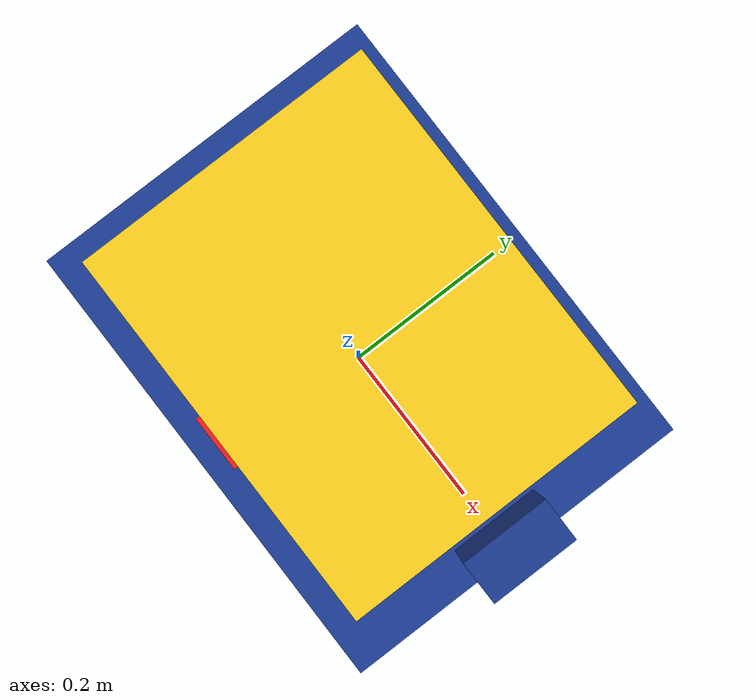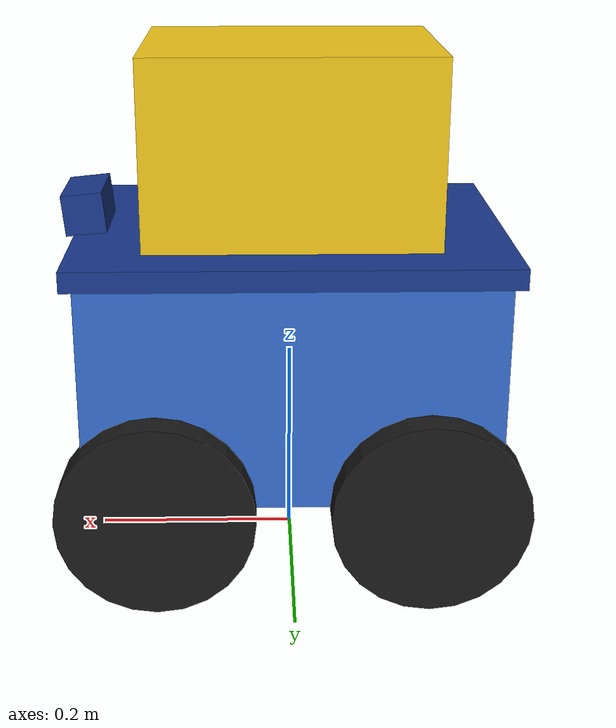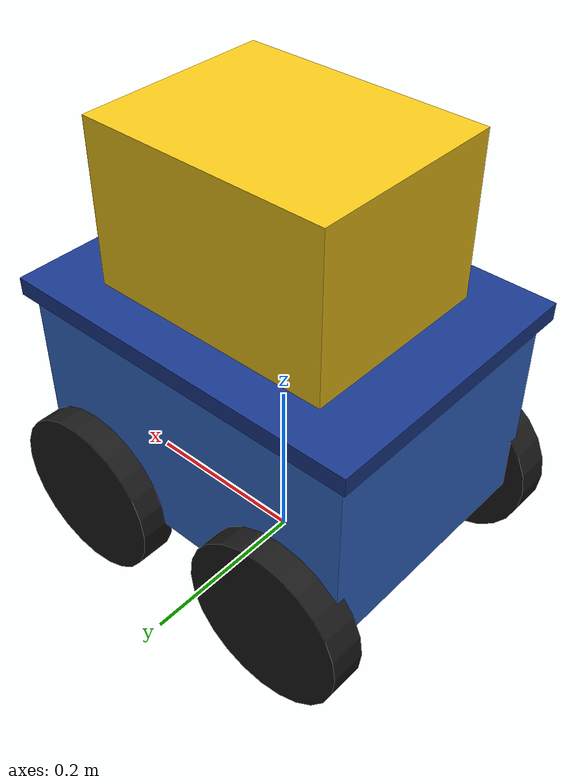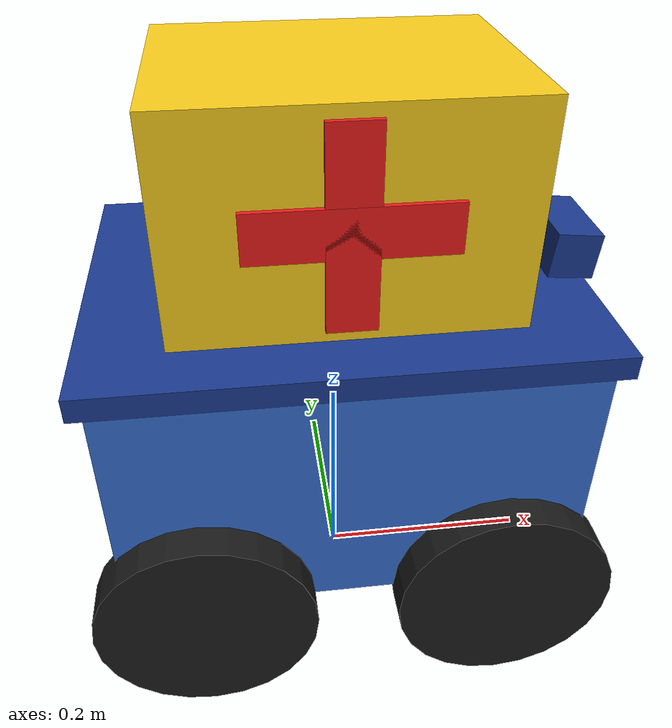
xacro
<?xml version="1.0"?>
<!--
  PharmaBot Robot URDF
  Robot de livraison médicale :
    - Base différentielle (4 roues)
    - Capteur LiDAR 360°
    - Caméra frontale
    - Boîte cargo
    - Compatible Nav2 + Gazebo Sim
-->
<robot name="pharmabot" xmlns:xacro="http://www.ros.org/wiki/xacro">

  <!-- ═══ PROPRIÉTÉS ═══ -->
  <xacro:property name="robot_mass"  value="12.0"/>
  <xacro:property name="base_w"     value="0.30"/>
  <xacro:property name="base_l"     value="0.40"/>
  <xacro:property name="base_h"     value="0.22"/>
  <xacro:property name="wheel_r"    value="0.095"/>
  <xacro:property name="wheel_w"    value="0.04"/>
  <xacro:property name="caster_r"   value="0.03"/>

  <!-- ═══ COULEURS GAZEBO ═══ -->
  <material name="blue_medical">
    <color rgba="0.20 0.42 0.80 1"/>
  </material>
  <material name="dark_blue">
    <color rgba="0.10 0.22 0.55 1"/>
  </material>
  <material name="black_rubber">
    <color rgba="0.10 0.10 0.10 1"/>
  </material>
  <material name="yellow_cargo">
    <color rgba="0.95 0.78 0.10 1"/>
  </material>
  <material name="cyan_sensor">
    <color rgba="0.00 0.85 0.90 1"/>
  </material>
  <material name="white">
    <color rgba="0.95 0.95 0.95 1"/>
  </material>
  <material name="red_cross">
    <color rgba="0.90 0.10 0.10 1"/>
  </material>
  <material name="gray_metal">
    <color rgba="0.55 0.55 0.60 1"/>
  </material>

  <!-- ═══════════════════════════════════════════════
       BASE LINK
  ═══════════════════════════════════════════════ -->
  <link name="base_footprint"/>

  <joint name="base_joint" type="fixed">
    <parent link="base_footprint"/>
    <child  link="base_link"/>
    <origin xyz="0 0 ${wheel_r}" rpy="0 0 0"/>
  </joint>

  <!-- Corps principal -->
  <link name="base_link">
    <visual>
      <origin xyz="0 0 ${base_h/2}" rpy="0 0 0"/>
      <geometry><box size="${base_l} ${base_w} ${base_h}"/></geometry>
      <material name="blue_medical"/>
    </visual>
    <collision>
      <origin xyz="0 0 ${base_h/2}" rpy="0 0 0"/>
      <geometry><box size="${base_l} ${base_w} ${base_h}"/></geometry>
    </collision>
    <inertial>
      <mass value="${robot_mass}"/>
      <inertia ixx="0.12" ixy="0" ixz="0" iyy="0.14" iyz="0" izz="0.18"/>
    </inertial>
  </link>

  <!-- Plaque haute -->
  <joint name="top_plate_joint" type="fixed">
    <parent link="base_link"/>
    <child  link="top_plate"/>
    <origin xyz="0 0 ${base_h}" rpy="0 0 0"/>
  </joint>
  <link name="top_plate">
    <visual>
      <origin xyz="0 0 0.01" rpy="0 0 0"/>
      <geometry><box size="${base_l+0.02} ${base_w+0.02} 0.02"/></geometry>
      <material name="dark_blue"/>
    </visual>
    <collision>
      <origin xyz="0 0 0.01" rpy="0 0 0"/>
      <geometry><box size="${base_l+0.02} ${base_w+0.02} 0.02"/></geometry>
    </collision>
    <inertial>
      <mass value="0.5"/>
      <inertia ixx="0.01" ixy="0" ixz="0" iyy="0.01" iyz="0" izz="0.01"/>
    </inertial>
  </link>

  <!-- Boîte cargo médicaments -->
  <joint name="cargo_joint" type="fixed">
    <parent link="top_plate"/>
    <child  link="cargo_box"/>
    <origin xyz="0 0 0.02" rpy="0 0 0"/>
  </joint>
  <link name="cargo_box">
    <visual>
      <origin xyz="0 0 0.09" rpy="0 0 0"/>
      <geometry><box size="0.28 0.22 0.18"/></geometry>
      <material name="yellow_cargo"/>
    </visual>
    <collision>
      <origin xyz="0 0 0.09" rpy="0 0 0"/>
      <geometry><box size="0.28 0.22 0.18"/></geometry>
    </collision>
    <inertial>
      <mass value="1.5"/>
      <inertia ixx="0.005" ixy="0" ixz="0" iyy="0.006" iyz="0" izz="0.007"/>
    </inertial>
  </link>

  <!-- Croix rouge cargo (avant) -->
  <joint name="cross_h_joint" type="fixed">
    <parent link="cargo_box"/>
    <child  link="cross_h"/>
    <origin xyz="0 -0.112 0.09" rpy="0 0 0"/>
  </joint>
  <link name="cross_h">
    <visual>
      <origin xyz="0 0 0" rpy="0 0 0"/>
      <geometry><box size="0.16 0.005 0.04"/></geometry>
      <material name="red_cross"/>
    </visual>
    <inertial>
      <mass value="0.01"/>
      <inertia ixx="0.0001" ixy="0" ixz="0" iyy="0.0001" iyz="0" izz="0.0001"/>
    </inertial>
  </link>
  <joint name="cross_v_joint" type="fixed">
    <parent link="cargo_box"/>
    <child  link="cross_v"/>
    <origin xyz="0 -0.112 0.09" rpy="0 0 0"/>
  </joint>
  <link name="cross_v">
    <visual>
      <origin xyz="0 0 0" rpy="0 0 0"/>
      <geometry><box size="0.04 0.005 0.16"/></geometry>
      <material name="red_cross"/>
    </visual>
    <inertial>
      <mass value="0.01"/>
      <inertia ixx="0.0001" ixy="0" ixz="0" iyy="0.0001" iyz="0" izz="0.0001"/>
    </inertial>
  </link>

  <!-- ═══════════════════════════════════════════════
       ROUES GAUCHE / DROITE
  ═══════════════════════════════════════════════ -->
  <xacro:macro name="wheel" params="name x y">
    <joint name="${name}_joint" type="continuous">
      <parent link="base_link"/>
      <child  link="${name}"/>
      <origin xyz="${x} ${y} 0" rpy="${-pi/2} 0 0"/>
      <axis xyz="0 0 1"/>
      <dynamics damping="0.02" friction="0.05"/>
    </joint>
    <link name="${name}">
      <visual>
        <geometry><cylinder radius="${wheel_r}" length="${wheel_w}"/></geometry>
        <material name="black_rubber"/>
      </visual>
      <collision>
        <geometry><cylinder radius="${wheel_r}" length="${wheel_w}"/></geometry>
      </collision>
      <inertial>
        <mass value="0.8"/>
        <inertia ixx="0.003" ixy="0" ixz="0" iyy="0.003" iyz="0" izz="0.006"/>
      </inertial>
    </link>
  </xacro:macro>

  <xacro:wheel name="wheel_left_front"  x=" 0.13" y=" 0.16"/>
  <xacro:wheel name="wheel_right_front" x=" 0.13" y="-0.16"/>
  <xacro:wheel name="wheel_left_rear"   x="-0.13" y=" 0.16"/>
  <xacro:wheel name="wheel_right_rear"  x="-0.13" y="-0.16"/>

  <!-- Roulette avant -->
  <joint name="caster_front_joint" type="fixed">
    <parent link="base_link"/>
    <child  link="caster_front"/>
    <origin xyz="0.17 0 ${-wheel_r+caster_r}" rpy="0 0 0"/>
  </joint>
  <link name="caster_front">
    <visual>
      <geometry><sphere radius="${caster_r}"/></geometry>
      <material name="gray_metal"/>
    </visual>
    <collision>
      <geometry><sphere radius="${caster_r}"/></geometry>
    </collision>
    <inertial>
      <mass value="0.1"/>
      <inertia ixx="0.0001" ixy="0" ixz="0" iyy="0.0001" iyz="0" izz="0.0001"/>
    </inertial>
  </link>

  <!-- ═══════════════════════════════════════════════
       LiDAR 360°
  ═══════════════════════════════════════════════ -->
  <joint name="lidar_joint" type="fixed">
    <parent link="top_plate"/>
    <child  link="lidar_link"/>
    <origin xyz="0 0 0.12" rpy="0 0 0"/>
  </joint>
  <link name="lidar_link">
    <visual>
      <geometry><cylinder radius="0.04" length="0.06"/></geometry>
      <material name="cyan_sensor"/>
    </visual>
    <collision>
      <geometry><cylinder radius="0.04" length="0.06"/></geometry>
    </collision>
    <inertial>
      <mass value="0.15"/>
      <inertia ixx="0.0002" ixy="0" ixz="0" iyy="0.0002" iyz="0" izz="0.0002"/>
    </inertial>
  </link>

  <!-- ═══════════════════════════════════════════════
       CAMÉRA FRONTALE
  ═══════════════════════════════════════════════ -->
  <joint name="camera_joint" type="fixed">
    <parent link="base_link"/>
    <child  link="camera_link"/>
    <origin xyz="${base_l/2} 0 ${base_h+0.04}" rpy="0 0.1 0"/>
  </joint>
  <link name="camera_link">
    <visual>
      <geometry><box size="0.04 0.08 0.04"/></geometry>
      <material name="dark_blue"/>
    </visual>
    <inertial>
      <mass value="0.05"/>
      <inertia ixx="0.0001" ixy="0" ixz="0" iyy="0.0001" iyz="0" izz="0.0001"/>
    </inertial>
  </link>

  <!-- ═══════════════════════════════════════════════
       GAZEBO PLUGINS
  ═══════════════════════════════════════════════ -->
  <gazebo>
    <!-- Differential Drive -->
    <plugin filename="gz-sim-diff-drive-system" name="gz::sim::systems::DiffDrive">
      <left_joint>wheel_left_front_joint</left_joint>
      <left_joint>wheel_left_rear_joint</left_joint>
      <right_joint>wheel_right_front_joint</right_joint>
      <right_joint>wheel_right_rear_joint</right_joint>
      <wheel_separation>0.32</wheel_separation>
      <wheel_radius>${wheel_r}</wheel_radius>
      <odom_publish_frequency>20</odom_publish_frequency>
      <topic>cmd_vel</topic>
      <odom_topic>odom</odom_topic>
      <tf_topic>tf</tf_topic>
      <frame_id>odom</frame_id>
      <child_frame_id>base_footprint</child_frame_id>
      <max_linear_acceleration>2</max_linear_acceleration>
    </plugin>

    <!-- Joint State Publisher -->
    <plugin filename="gz-sim-joint-state-publisher-system" name="gz::sim::systems::JointStatePublisher">
      <topic>joint_states</topic>
    </plugin>
  </gazebo>

  <!-- LiDAR Sensor -->
  <gazebo reference="lidar_link">
    <sensor name="lidar_sensor" type="lidar">
      <topic>scan</topic>
      <always_on>true</always_on>
      <update_rate>10</update_rate>
      <visualize>true</visualize>
      <lidar>
        <scan>
          <horizontal>
            <samples>360</samples>
            <resolution>1</resolution>
            <min_angle>-3.14159</min_angle>
            <max_angle>3.14159</max_angle>
          </horizontal>
        </scan>
        <range>
          <min>0.15</min>
          <max>8.0</max>
          <resolution>0.01</resolution>
        </range>
        <noise>
          <type>gaussian</type>
          <mean>0.0</mean>
          <stddev>0.01</stddev>
        </noise>
      </lidar>
    </sensor>
    <material>
      <ambient>0.0 0.85 0.9 1</ambient>
      <diffuse>0.0 0.85 0.9 1</diffuse>
    </material>
  </gazebo>

  <!-- Caméra -->
  <gazebo reference="camera_link">
    <sensor name="camera_sensor" type="camera">
      <topic>camera/image</topic>
      <always_on>true</always_on>
      <update_rate>15</update_rate>
      <camera>
        <horizontal_fov>1.047</horizontal_fov>
        <image>
          <width>640</width>
          <height>480</height>
          <format>R8G8B8</format>
        </image>
        <clip>
          <near>0.05</near>
          <far>20.0</far>
        </clip>
      </camera>
    </sensor>
  </gazebo>

  <!-- Matériaux Gazebo -->
  <gazebo reference="base_link">
    <material>Gazebo/Blue</material>
  </gazebo>
  <gazebo reference="cargo_box">
    <material>Gazebo/Yellow</material>
  </gazebo>
  <gazebo reference="wheel_left_front">
    <material>Gazebo/DarkGrey</material>
    <mu1>1.2</mu1>
    <mu2>1.2</mu2>
  </gazebo>
  <gazebo reference="wheel_right_front">
    <material>Gazebo/DarkGrey</material>
    <mu1>1.2</mu1>
    <mu2>1.2</mu2>
  </gazebo>
  <gazebo reference="wheel_left_rear">
    <material>Gazebo/DarkGrey</material>
    <mu1>1.2</mu1>
    <mu2>1.2</mu2>
  </gazebo>
  <gazebo reference="wheel_right_rear">
    <material>Gazebo/DarkGrey</material>
    <mu1>1.2</mu1>
    <mu2>1.2</mu2>
  </gazebo>
  <gazebo reference="caster_front">
    <mu1>0.001</mu1>
    <mu2>0.001</mu2>
  </gazebo>

</robot>
